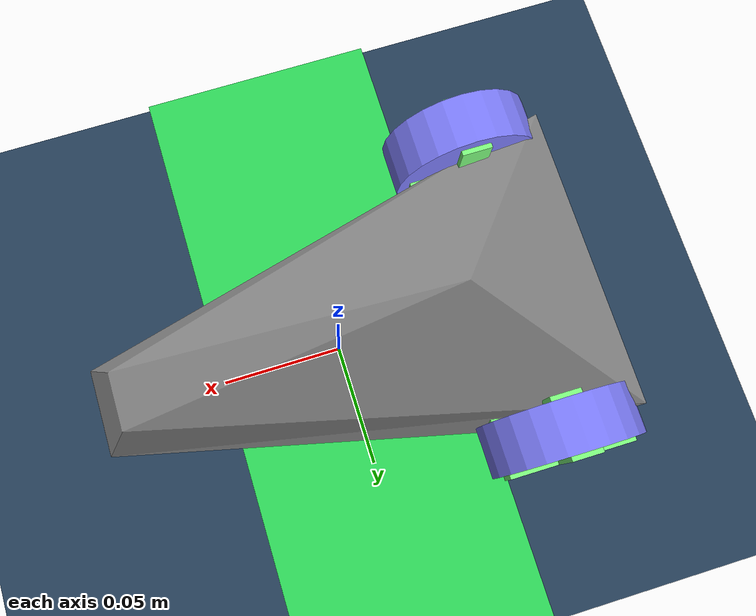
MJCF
<mujoco>
  <compiler autolimits="true"/>

  <asset>
    <texture name="grid" type="2d" builtin="checker" width="512" height="512" rgb1=".1 .2 .3" rgb2=".2 .3 .4"/>
    <material name="grid" texture="grid" texrepeat="1 1" texuniform="true" reflectance=".2"/>
    <texture name="flag" type="2d" builtin="checker" width="64" height="64" rgb1="1 1 1" rgb2=".85 .1 .12"/>
    <material name="flag" texture="flag" texrepeat="2 14" texuniform="false"/>
    <mesh name="chasis" scale=".01 .006 .0015"
      vertex=" 9   2   0
              -10  10  10
               9  -2   0
               10  3  -10
               10 -3  -10
              -8   10 -10
              -10 -10  10
              -8  -10 -10
              -5   0   20"/>
  </asset>

  <default>
    <joint damping=".03" actuatorfrcrange="-1 1"/>
    <default class="wheel">
      <geom type="cylinder" size=".03 .01" rgba=".5 .5 1 1"/>
    </default>
    <default class="decor">
      <site type="box" rgba=".5 1 .5 1"/>
    </default>
  </default>

  <worldbody>
    <geom name="floor" type="plane" size="12 12 .01" material="grid"/>
    <geom name="start_stripe" type="box" pos="0 0 .002" size=".05 .5 .002"
          rgba=".18 .85 .35 .95" contype="0" conaffinity="0"/>
    <body name="car" pos="0 0 .03">
      <freejoint/>
      <light name="top light" pos="0 0 2" mode="trackcom" diffuse=".4 .4 .4"/>
      <geom name="chasis" type="mesh" mesh="chasis"/>
      <geom name="front wheel" pos=".08 0 -.015" type="sphere" size=".015" condim="1" priority="1"/>
      <light name="front light" pos=".1 0 .02" dir="2 0 -1" diffuse="1 1 1"/>
      <body name="left wheel" pos="-.07 .06 0" zaxis="0 1 0">
        <joint name="left"/>
        <geom class="wheel"/>
        <site class="decor" size=".006 .025 .012"/>
        <site class="decor" size=".025 .006 .012"/>
      </body>
      <body name="right wheel" pos="-.07 -.06 0" zaxis="0 1 0">
        <joint name="right"/>
        <geom class="wheel"/>
        <site class="decor" size=".006 .025 .012"/>
        <site class="decor" size=".025 .006 .012"/>
      </body>
    </body>
  </worldbody>

  <actuator>
    <motor name="left_motor" joint="left" ctrlrange="-1 1"/>
    <motor name="right_motor" joint="right" ctrlrange="-1 1"/>
  </actuator>

  <sensor>
    <jointactuatorfrc name="right" joint="right"/>
    <jointactuatorfrc name="left" joint="left"/>
  </sensor>
</mujoco>
